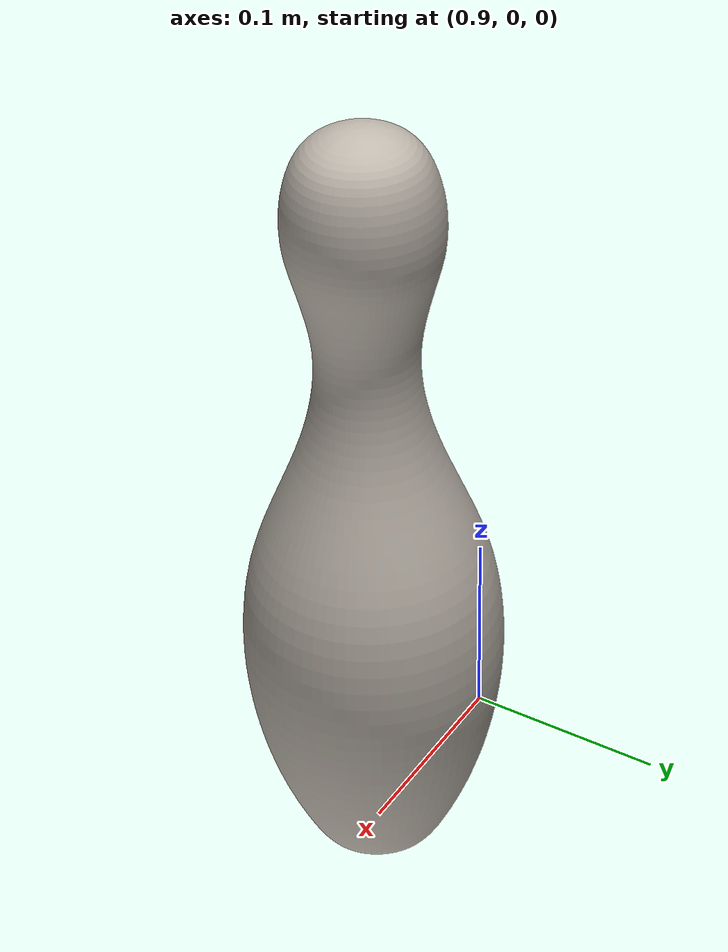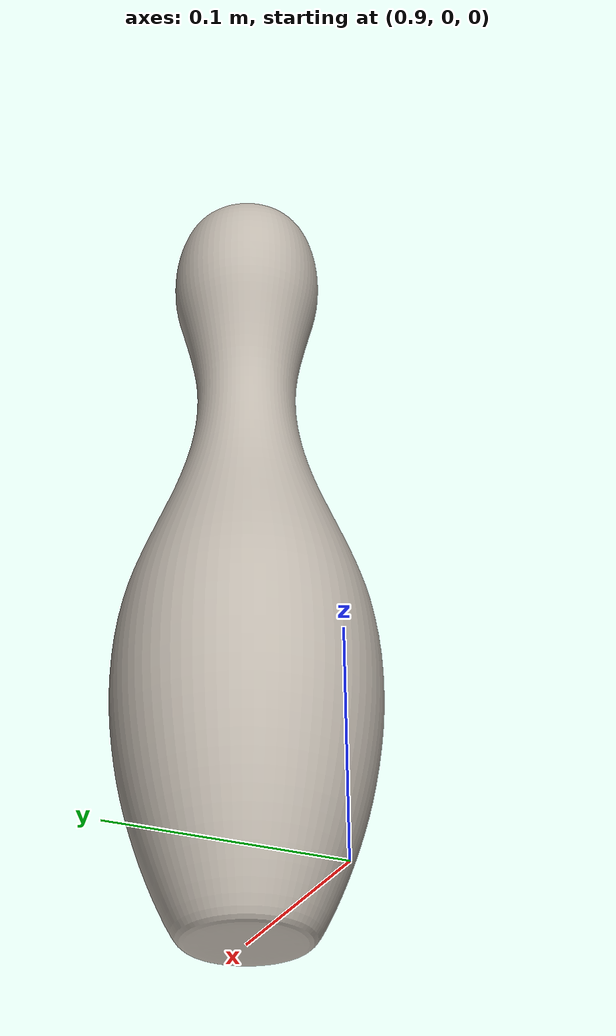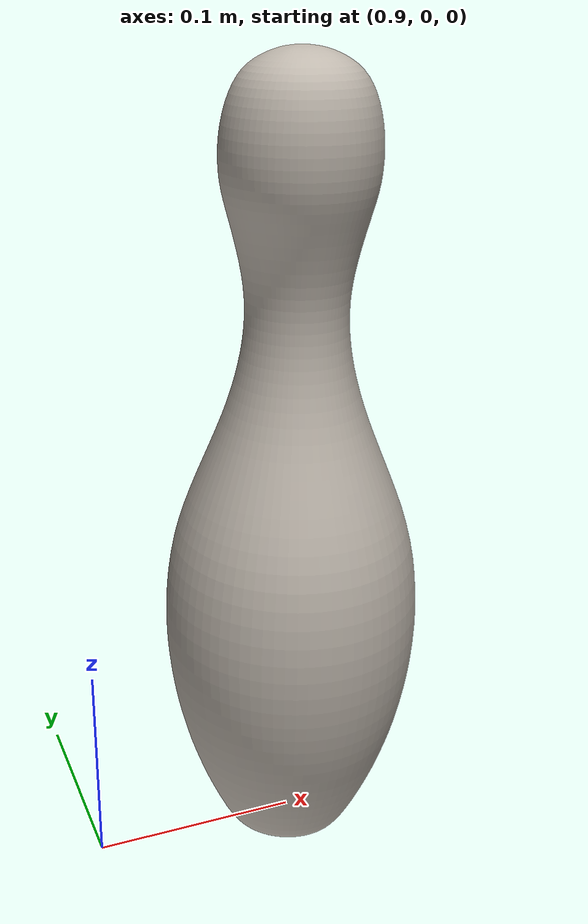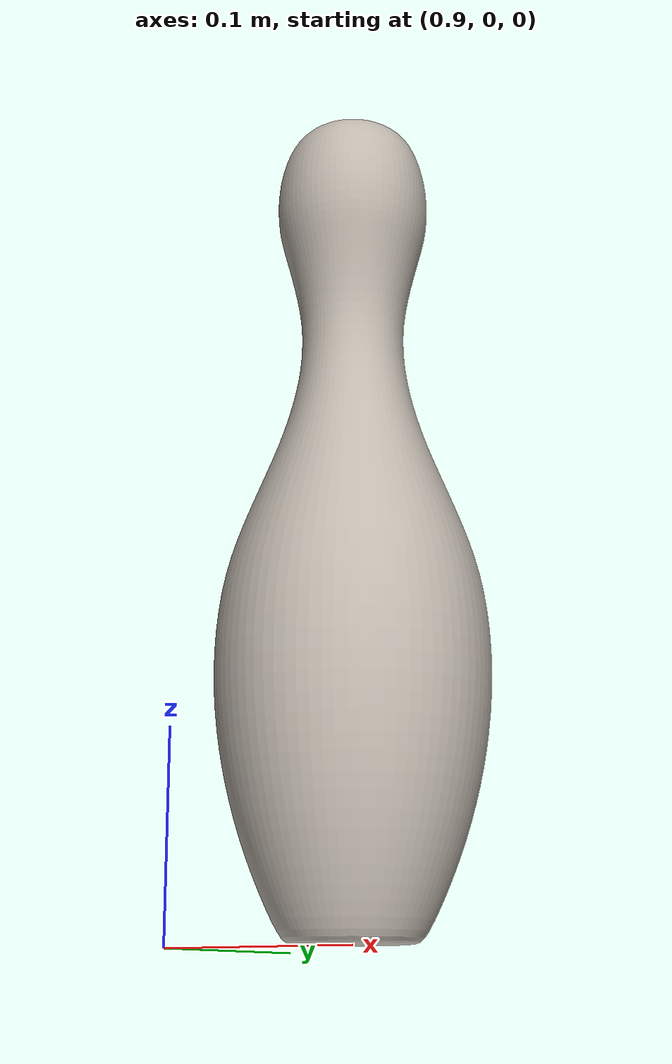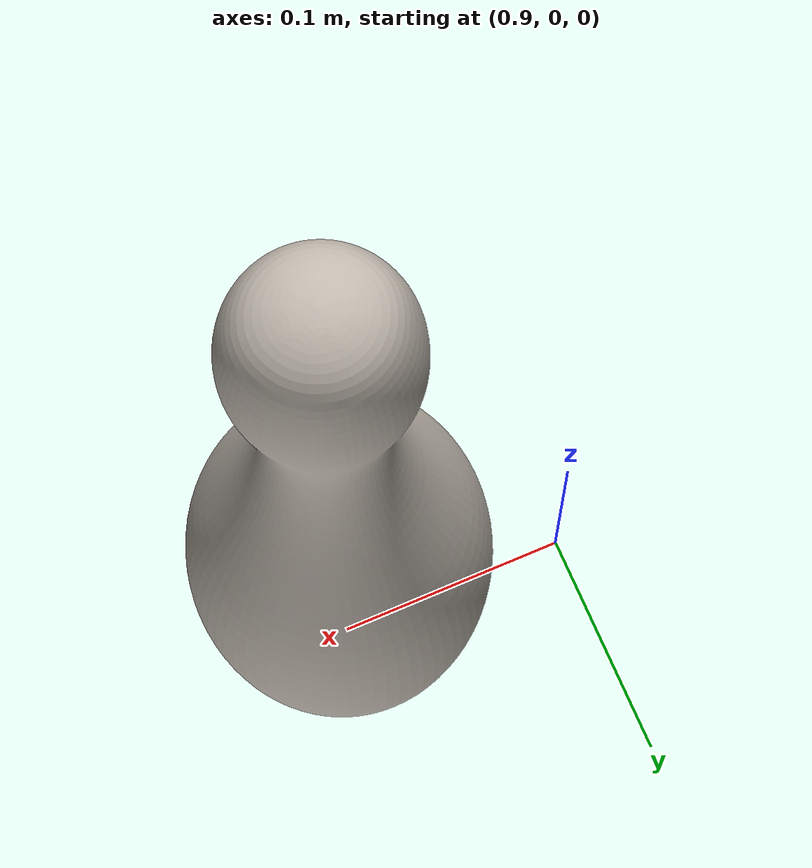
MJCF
<mujoco model="bowling_pin">
  <default>
    <default class="visual">
      <geom conaffinity="0" contype="0" group="2" material="pin" type="mesh"></geom>
    </default>
    <default class="collision">
      <geom group="3" type="mesh"></geom>
    </default>
  </default>
  <asset>
    <texture file="bowling_pin.png" name="bowling_pin" type="2d"></texture>
    <material name="pin" shininess="1" specular="1" texture="bowling_pin"></material>
    <mesh file="bowling_pin.obj" scale="0.01 0.01 0.01"></mesh>
  </asset>
  <worldbody>
    <body name="bowling_pin" pos="1 0 0">
      <geom class="visual" mesh="bowling_pin"></geom>
      <geom class="collision" mesh="bowling_pin"></geom>
    </body>
  </worldbody>
</mujoco>
